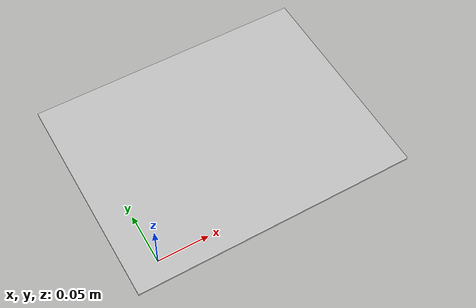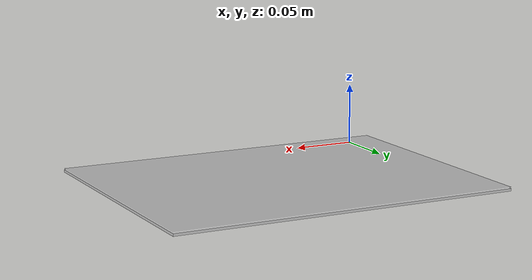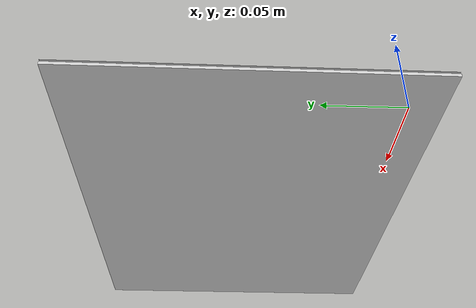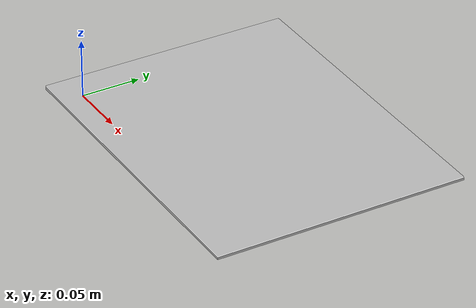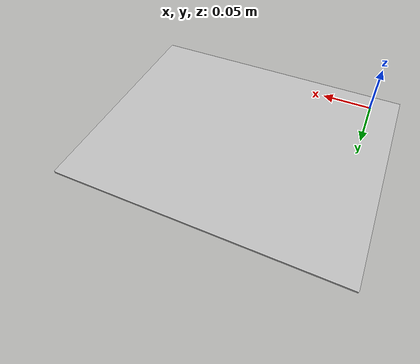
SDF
<?xml version="1.0" ?>
<sdf version="1.7">
  <model name="charuco_target">
    <static>true</static>
    <link name="base_link">
      <visual name="marker">
        <geometry>
          <mesh>
            <scale>1 1 1</scale>
            <uri>model://charuco_target/meshes/charuco_target2.dae</uri>
          </mesh>
        </geometry>
      </visual>
    </link>
  </model>
</sdf>
